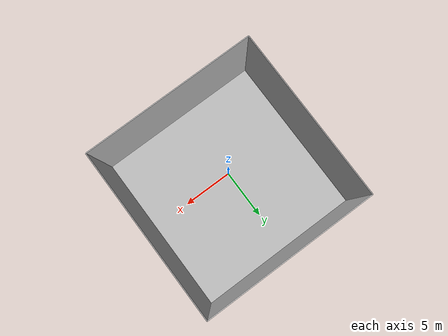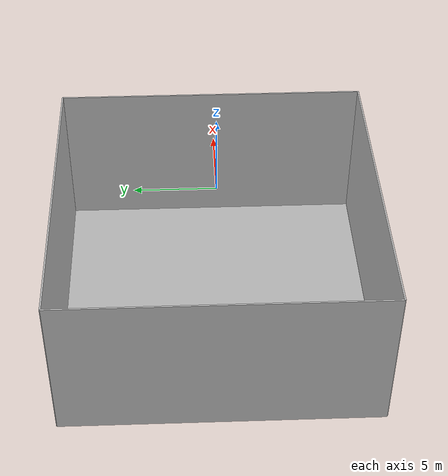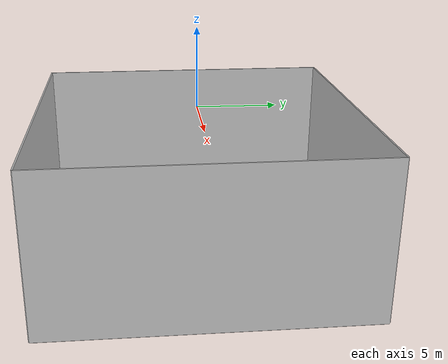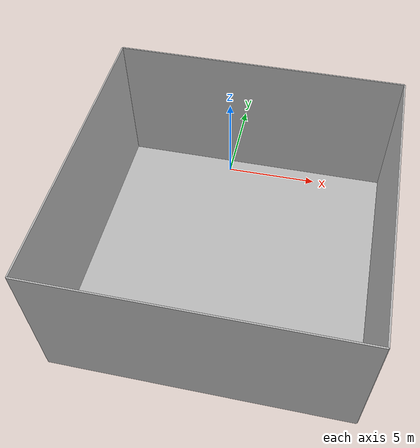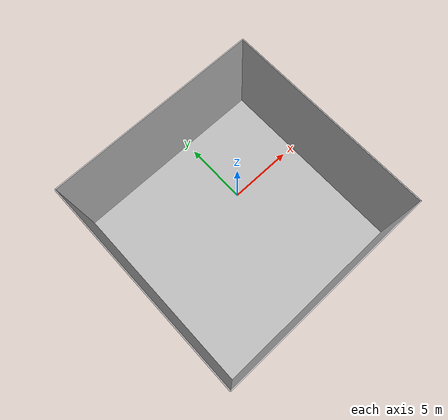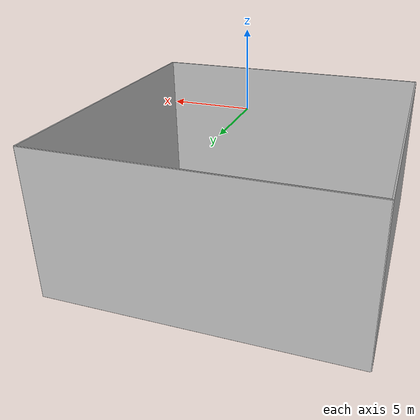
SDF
<?xml version="1.0" ?>
<sdf version="1.5">
  <world name="empty_underwater">

    <physics name="default_physics" default="true" type="ode">
      <max_step_size>0.001</max_step_size>
      <real_time_factor>1</real_time_factor>
      <real_time_update_rate>1000</real_time_update_rate>
      <magnetic_field>34 0 -36</magnetic_field>
      <gravity>0 0 -9.8</gravity>
    </physics>

    <spherical_coordinates>
      <surface_model>EARTH_WGS84</surface_model>
      <latitude_deg>56.71897669633431</latitude_deg>
      <longitude_deg>3.515625</longitude_deg>
      <elevation>0</elevation>
      <heading_deg>0</heading_deg>
    </spherical_coordinates>

    <scene>
      <ambient>0.8 0.8 0.8 1.0</ambient>
      <sky>
        <clouds>
          <speed>12</speed>
        </clouds>
      </sky>
      <shadows>1</shadows>
      <fog>
        <color>1.0 1.0 1.0 0.0</color>
        <type>linear</type>
        <density>0.0</density>
        <start>1000</start>
        <end>2000</end>
      </fog>
    </scene>

    <include>
      <uri>model://sun</uri>
    </include>

    <model name="small_ocean_box">
      <static>true</static>
      <link name="link">
        <visual name="ground">
          <cast_shadows>false</cast_shadows>
          <pose>0 0 -10 0 0 0</pose>
          <geometry><box><size>20 20 0.1</size></box></geometry>
          <material>
            <script>
              <uri>file://Media/materials/scripts/sand.material</uri>
              <name>UUVSimulator/SandAndStones</name>
            </script>
          </material>
        </visual>
        <collision name="ground">
          <pose>0 0 -10 0 0 0</pose>
          <geometry><box><size>20 20 0.1</size></box></geometry>
        </collision>

        <visual name="north">
          <cast_shadows>false</cast_shadows>
          <pose>10 0 -5 0 0 0</pose>
          <geometry><box><size>0.1 20 10</size></box></geometry>
          <material>
            <script>
              <uri>file://Media/materials/scripts/water.material</uri>
              <name>UUVSimulator/SeaWall</name>
            </script>
          </material>
        </visual>
        <visual name="south">
          <cast_shadows>false</cast_shadows>
          <pose>-10 0 -5 0 0 0</pose>
          <geometry><box><size>0.1 20 10</size></box></geometry>
          <material>
            <script>
              <uri>file://Media/materials/scripts/water.material</uri>
              <name>UUVSimulator/SeaWall</name>
            </script>
          </material>
        </visual>
        <visual name="east">
          <cast_shadows>false</cast_shadows>
          <pose>0 -10 -5 0 0 0</pose>
          <geometry><box><size>20 0.1 10</size></box></geometry>
          <material>
            <script>
              <uri>file://Media/materials/scripts/water.material</uri>
              <name>UUVSimulator/SeaWall</name>
            </script>
          </material>
        </visual>
        <visual name="west">
          <cast_shadows>false</cast_shadows>
          <pose>0 10 -5 0 0 0</pose>
          <geometry><box><size>20 0.1 10</size></box></geometry>
          <material>
            <script>
              <uri>file://Media/materials/scripts/water.material</uri>
              <name>UUVSimulator/SeaWall</name>
            </script>
          </material>
        </visual>
      </link>
    </model>

    <plugin name="underwater_current_plugin" filename="libuuv_underwater_current_ros_plugin.so">
      <namespace>hydrodynamics</namespace>
      <constant_current>
        <topic>current_velocity</topic>
        <velocity>
          <mean>0</mean>
          <min>0</min>
          <max>5</max>
          <mu>0.0</mu>
          <noiseAmp>0.0</noiseAmp>
        </velocity>
        <horizontal_angle>
          <mean>0</mean>
          <min>-3.141592653589793238</min>
          <max>3.141592653589793238</max>
          <mu>0.0</mu>
          <noiseAmp>0.0</noiseAmp>
        </horizontal_angle>
        <vertical_angle>
          <mean>0</mean>
          <min>-3.141592653589793238</min>
          <max>3.141592653589793238</max>
          <mu>0.0</mu>
          <noiseAmp>0.0</noiseAmp>
        </vertical_angle>
      </constant_current>
    </plugin>

    <plugin name="sc_interface" filename="libuuv_sc_ros_interface_plugin.so"/>

  </world>
</sdf>
